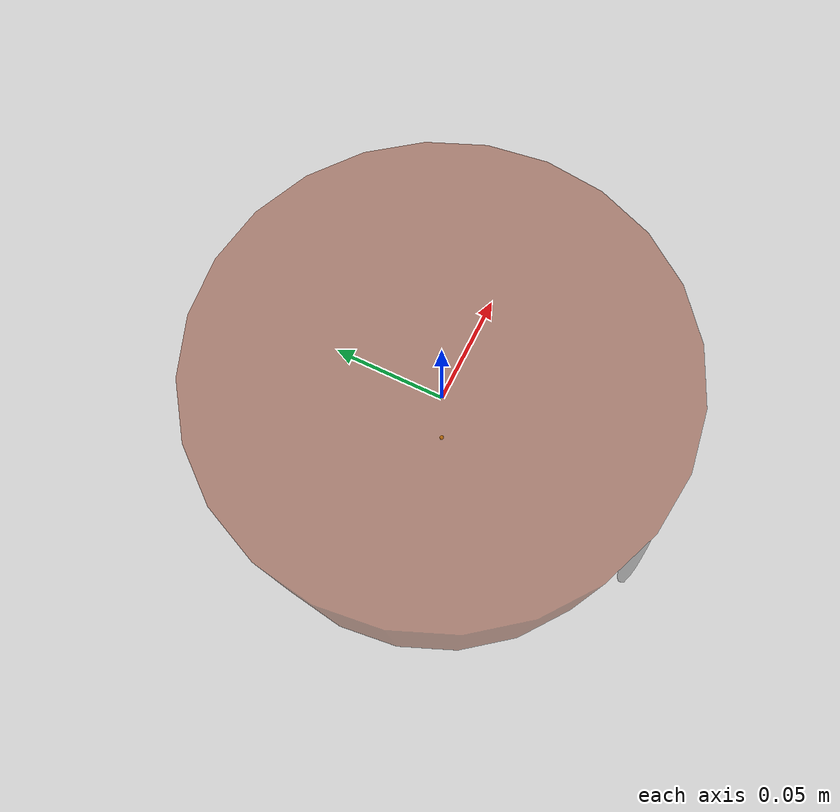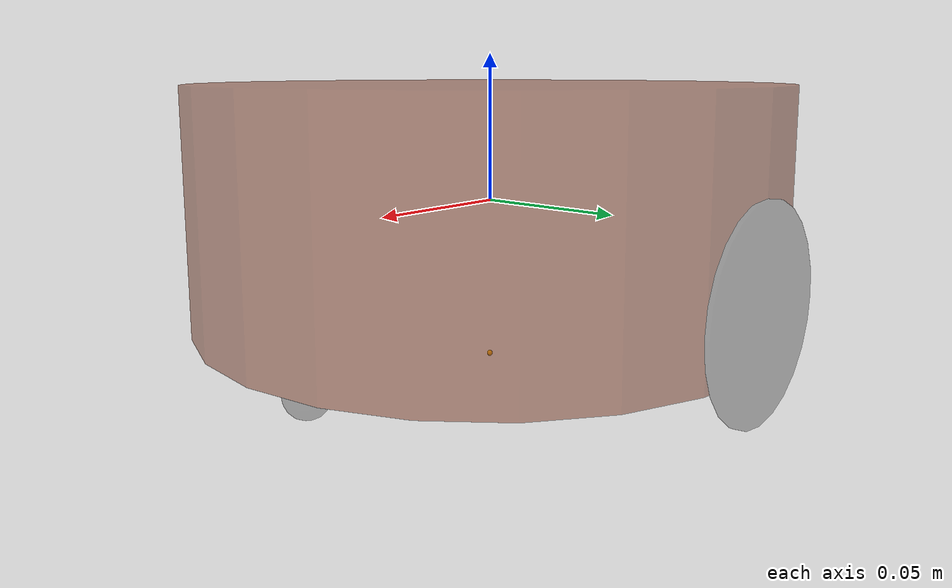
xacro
<robot name="mycar" xmlns:xacro="http://wiki.ros.org/xacro">
    <!-- 属性封装 -->
    <xacro:property name="wheel_radius" value="0.0325" />
    <xacro:property name="wheel_length" value="0.0015" />
    <xacro:property name="PI" value="3.1415927" />
    <xacro:property name="base_link_length" value="0.08" />
    <xacro:property name="lidi_space" value="0.015" />
    <xacro:property name="base_link_radius" value="0.1" />
    <xacro:property name="base_mass" value="2" />
    <xacro:property name="wheel_mass" value="0.5" />

    <link name="base_footprint">
        <visual>
            <geometry>
                <sphere radius="0.001"/>
            </geometry>
        </visual>
    </link>

    <link name="base_link">
        <visual>
            <geometry>
                <cylinder radius="${base_link_radius}" length="${base_link_length}"/>
            </geometry>
            <origin xyz="0 0 0" rpy="0 0 0" />
            <material name="base_color" >
                <color rgba='0.5 0.2 0.1 0.5'/>
            </material>
        </visual>
        <collision>
            <geometry>
                <cylinder radius="${base_link_radius}" length="${base_link_length}"/>
            </geometry>
            <origin xyz="0 0 0" rpy="0 0 0" />
        </collision>
        <!-- 调用惯性矩阵函数 -->
        <xacro:cylinder_inertial_matrix m='${base_mass}' r='${base_link_radius}' h='${base_link_length}' />
    </link>
    <gazebo reference='base_link'>
        <material>Gazebo/Yellow</material>
    </gazebo>

    <joint name="link2footprint" type="fixed">
        <parent link='base_link'/>
        <child link='base_footprint'/>
        <origin xyz='0 0 -0.055' rpy='0 0 0' />
    </joint>

    <xacro:macro name="wheel_func" params="wheel_name flag" >
        <link name="${wheel_name}_wheel">
            <visual>
                <geometry>
                    <cylinder radius="${wheel_radius}" length="${wheel_length}" />
                </geometry>
                <origin xyz="0 0 0" rpy="${PI / 2} 0 0" />

                <material name="wheel_color">
                    <color rgba="0 0 0 0.3" />
                </material>
            </visual>
            <collision>
                <geometry>
                    <cylinder radius="${wheel_radius}" length="${wheel_length}" />
                </geometry>
                <origin xyz="0 0 0" rpy="${PI / 2} 0 0" />
            </collision>
            <xacro:cylinder_inertial_matrix m='${wheel_mass}' r='${wheel_radius}' h='${wheel_length}' />
        </link>
        <gazebo reference='${wheel_name}_wheel'>
            <material>Gazebo/Red</material>
        </gazebo>

        <!-- 3-2.joint -->
        <joint name="base_${wheel_name}_wheel_joint" type="continuous">
            <parent link="base_link"  />
            <child link="${wheel_name}_wheel" />
            <!--
                x 无偏移
                y 车体半径
                z z= 车体高度 / 2 + 离地间距 - 车轮半径

            -->
            <origin xyz="0 ${0.1 * flag} ${(base_link_length / 2 + lidi_space - wheel_radius) * -1}" rpy="0 0 0" />
            <axis xyz="0 1 0" />
        </joint>
    </xacro:macro>

    <!-- 从动轮 -->
    <xacro:property name="small_wheel_radius" value="0.0075" />
    <xacro:property name="small_wheel_mass" value="0.25" />
    <xacro:property name="small_joint_z" value="${(base_link_length / 2 +lidi_space - small_wheel_radius) * -1}" />

    <xacro:macro name="small_wheel_func" params="small_wheel_name flag" >
        <link name="${small_wheel_name}_wheel">
            <visual>
                <geometry>
                    <sphere radius="${small_wheel_radius}"/>
                </geometry>

                <origin xyz="0 0 0" rpy="0 0 0" />

                <material name="wheel_color" >
                    <color rgba='0 0 0 0.3'/>
                </material>
            </visual>
            <collision>
                <geometry>
                    <sphere radius="${small_wheel_radius}"/>
                </geometry>

                <origin xyz="0 0 0" rpy="0 0 0" />
            </collision>
            <xacro:sphere_inertial_matrix m='${small_wheel_mass}' r='${small_wheel_radius}' />
        </link>
        <gazebo reference="${small_wheel_name}_wheel">
            <material>Gazebo/Red</material>
        </gazebo>

        <joint name="${small_wheel_name}2link" type='continuous' >
            <parent link='base_link'/>
            <child link='${small_wheel_name}_wheel'/>
            <origin xyz='${0.08 * flag} 0 ${small_joint_z}' rpy='0 0 0' />
            <!-- 关节旋转参考轴 万向轮不设置旋转轴还报错,服了-->
            <axis xyz='0 1 0'/>
        </joint>

    </xacro:macro >

    <xacro:wheel_func wheel_name="l" flag="1" />
    <xacro:wheel_func wheel_name="r" flag="-1" />
    <xacro:small_wheel_func small_wheel_name="front" flag="1" />
    <xacro:small_wheel_func small_wheel_name="back" flag="-1" />
</robot>
